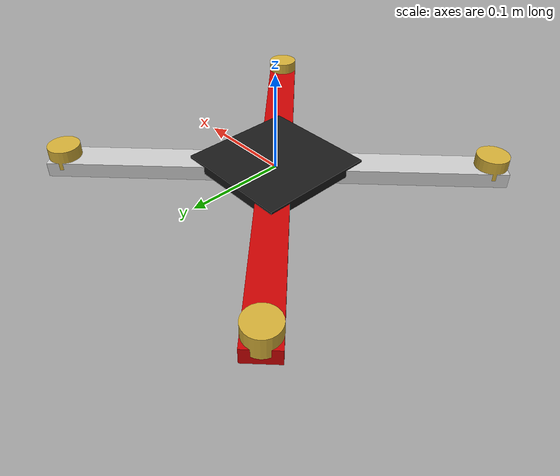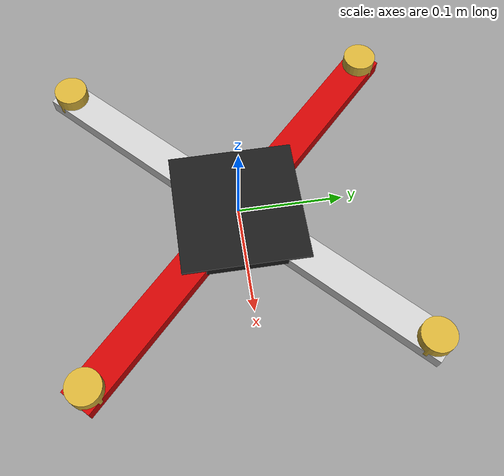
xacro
<?xml version="1.0"?>
<robot xmlns:xacro="http://www.ros.org/wiki/xacro" name="Kwad_frame">

	<xacro:include filename="$(find robotuna_ekf_simulator)/urdf/material.xacro" />
	<xacro:include filename="$(find robotuna_ekf_simulator)/urdf/macros.xacro"/>
	<!-- Constants -->
	<xacro:property name="pi_value" value="3.14159263" />

	<!-- Dimensions for cross beam arms -->
	<xacro:property name="width" value="0.0315" />
	<xacro:property name="length" value="0.45" />
	<xacro:property name="height" value="0.015" />
	<!-- Mass of cross beam arms -->
	<xacro:property name="mass_fr" value="0.3" />

	<!-- Dimension of propellers -->
	<xacro:property name="radiusp" value="0.20" />
	<!-- Mass of propellers -->
	<xacro:property name="mass_pr" value="0.0055" />
	<!-- Location of propellers -->
	<xacro:property name="prop_loc" value="0.15909" />

	<!-- Define inertial macro -->
	<xacro:macro name="default_inertial" params="mass p ix_value iy_value iz_value" >
		<inertial>
			<origin xyz="0 0 0" rpy="0 0 ${p}" />
			<mass value="${mass}" />
			<inertia ixx="${ix_value}" ixy="0" ixz="0"
					 iyy="${iy_value}" iyz="0" izz="${iz_value}" />
		</inertial>
	</xacro:macro>

	<!-- Base link -->
	<link name="base_link"/>

<!-- Quadcopter frame links -->
	<!-- First arm -->
	<xacro:boxLink
		name="arm_1"
		mass="${mass_fr}"
		x_dim="${width}" y_dim="${length}" z_dim="${height}"
		y="${pi_value/4}"
		color="red"
	/>

	<!-- Second arm -->
	<xacro:boxLink
		name="arm_2"
		mass="${mass_fr}"
		x_dim="${width}" y_dim="${length}" z_dim="${height}"
		y="${-pi_value/4}"
		color="white"
	/>

	<!-- Electronics mounting plate -->
	<xacro:boxLink
		name="plate1"
		mass="0.01"
		x_dim="0.12" y_dim="0.12" z_dim="0.01"
		color="black"
	/>
<!-- Motor links -->
	<!-- Front right motor -->
	<xacro:cylinderLink
		name="cyl_fr"
		mass="0.01"
		radius="0.016"
		height="0.02"
		color="golden"
	/>

	<!-- Back left motor -->
	<xacro:cylinderLink
		name="cyl_bl"
		mass="0.01"
		radius="0.016"
		height="0.02"
		color="golden"
	/>

	<!-- Front left motor -->
	<xacro:cylinderLink
		name="cyl_fl"
		mass="0.01"
		radius="0.016"
		height="0.02"
		color="golden"
	/>

	<!-- Back right motor -->
	<xacro:cylinderLink
		name="cyl_br"
		mass="0.01"
		radius="0.016"
		height="0.02"
		color="golden"
	/>

	<joint name="base_joint" type="fixed">
		<parent link="base_link" />
		<child link="arm_1" />
		<origin xyz="0 0 0" rpy="0 0 0" />
  	</joint>

	<!-- Define the joint between the arms of the frame -->
	<joint name="center" type="fixed">
		<parent link="arm_1" />
		<child link="arm_2" />

		<origin xyz="0 0 0" rpy="0 0 0"/>
		<axis xyz="0 0 1" />
	</joint>
<!-- Define joint between plate1 and frame -->
	<joint name="joint_plate1_frame" type="fixed">
		<parent link="arm_2" />
		<child link="plate1" />
		<origin xyz="${0} ${0} 0.005" rpy="0 0 0" />
		<axis xyz="0 0 1" />
	</joint>
<!-- Define joint between cyl_fr and frame -->
	<joint name="joint_cyl_fr_frame" type="fixed">
		<parent link="arm_2" />
		<child link="cyl_fr" />
		<origin xyz="${prop_loc - 0.01} ${prop_loc - 0.01} 0.01" rpy="0 0 0" />
		<axis xyz="0 0 1" />
	</joint>
<!-- Define joint between cyl_bl and frame -->
	<joint name="joint_cyl_bl_frame" type="fixed">
		<parent link="arm_2" />
		<child link="cyl_bl" />
		<origin xyz="${-prop_loc + 0.01} ${-prop_loc + 0.01} 0.01" rpy="0 0 0" />
		<axis xyz="0 0 1" />
	</joint>
<!-- Define joint between cyl_fl and frame -->
	<joint name="joint_cyl_fl_frame" type="fixed">
		<parent link="arm_1" />
		<child link="cyl_fl" />
		<origin xyz="${-prop_loc + 0.01} ${prop_loc - 0.01} 0.01" rpy="0 0 0" />
		<axis xyz="0 0 1" />
	</joint>
<!-- Define joint between cyl_br and frame -->
	<joint name="joint_cyl_br_frame" type="fixed">
		<parent link="arm_1" />
		<child link="cyl_br" />
		<origin xyz="${prop_loc - 0.01} ${-prop_loc + 0.01} 0.01" rpy="0 0 0" />
		<axis xyz="0 0 1" />
	</joint>
</robot>

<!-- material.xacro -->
<robot xmlns:xacro="http://www.ros.org/wiki/xacro">
	<material name="white">
		<color rgba="0.8 0.8 0.8 1" />
	</material>

	<material name="black">
		<color rgba="0.1 0.1 0.1 1" />
	</material>

	<material name="red">
		<color rgba="0.8 0.01 0.01 1" />
	</material>

	<material name="blue">
		<color rgba="0.01 0.01 0.8 1" />
	</material>

	<material name="golden">
		<color rgba="${212/255} ${175/255} ${55/255} 1" />
	</material>

</robot>

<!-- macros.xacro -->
<robot xmlns:xacro="http://www.ros.org/wiki/xacro">

  <!-- Fill-in-the-blank inertia diagonal matrix -->
	<xacro:macro name="default_inertia" params="mass ix iy iz" >
    <inertia  ixx="${ix}" ixy = "0" ixz = "0"
              iyy="${iy}" iyz = "0"
              izz="${iz}"
    />
	</xacro:macro>

  <xacro:macro name="cylinder_inertia" params="mass r h">
    <inertia  ixx="${mass*(3*r*r+h*h)/12}" ixy = "0" ixz = "0"
              iyy="${mass*(3*r*r+h*h)/12}" iyz = "0"
              izz="${mass*r*r/2}"
    />
  </xacro:macro>

  <xacro:macro name="box_inertia" params="mass x y z">
    <inertia  ixx="${mass*(y*y+z*z)/12}" ixy = "0" ixz = "0"
              iyy="${mass*(x*x+z*z)/12}" iyz = "0"
              izz="${mass*(x*x+y*y)/12}"
    />
  </xacro:macro>

  <xacro:macro name="sphere_inertia" params="mass r">
    <inertia  ixx="${2*mass*r*r/5}" ixy = "0" ixz = "0"
              iyy="${2*mass*r*r/5}" iyz = "0"
              izz="${2*mass*r*r/5}"
    />
  </xacro:macro>

  <xacro:macro name="boxLink" params="name mass x_dim y_dim z_dim r:=0 p:=0 y:=0 color:=grey">
    <link name="${name}">
      <inertial>
        <origin xyz="0 0 0" rpy="${r} ${p} ${y}"/>
        <mass value="${mass}"/>
        <xacro:box_inertia mass="${mass}" x="${x_dim}" y="${y_dim}" z="${z_dim}"/>
      </inertial>

      <collision>
        <origin xyz="0 0 0" rpy="${r} ${p} ${y}" />
        <geometry>
          <box size="${x_dim} ${y_dim} ${z_dim}" />
        </geometry>
      </collision>

      <visual>
        <origin xyz="0 0 0" rpy="${r} ${p} ${y}"/>
        <geometry>
          <box size="${x_dim} ${y_dim} ${z_dim}"/>
        </geometry>
        <material name="${color}"/>
      </visual>
    </link>
  </xacro:macro>

  <xacro:macro name="boxLink_customInertia"
    params="name mass
            x_dim y_dim z_dim
            ix iy iz
            r:=0 p:=0 y:=0
            color:=grey"
  >
    <link name="${name}">
      <inertial>
        <origin xyz="0 0 0" rpy="${r} ${p} ${y}"/>
        <mass value="${mass}"/>
        <xacro:default_inertia mass="${mass}" ix="${ix}" iy="${iy}" iz="${iz}"/>
      </inertial>

      <collision>
        <origin xyz="0 0 0" rpy="${r} ${p} ${y}" />
        <geometry>
          <box size="${x_dim} ${y_dim} ${z_dim}" />
        </geometry>
      </collision>

      <visual>
        <origin xyz="0 0 0" rpy="${r} ${p} ${y}"/>
        <geometry>
          <box size="${x_dim} ${y_dim} ${z_dim}"/>
        </geometry>
        <material name="${color}"/>
      </visual>
    </link>
  </xacro:macro>

  <xacro:macro name="cylinderLink" params="name mass radius height r:=0 p:=0 y:=0 color:=grey">
    <link name="${name}">
      <inertial>
        <origin xyz="0 0 0" rpy="${r} ${p} ${y}"/>
        <mass value="${mass}"/>
        <xacro:cylinder_inertia mass="${mass}" r="${radius}" h="${height}"/>
      </inertial>

      <collision>
        <origin xyz="0 0 0" rpy="${r} ${p} ${y}"/>
        <geometry>
          <cylinder radius="${radius}" length="${height}"/>
        </geometry>
      </collision>

      <visual>
        <origin xyz="0 0 0" rpy="${r} ${p} ${y}"/>
        <geometry>
          <cylinder radius="${radius}" length="${height}"/>
        </geometry>
        <material name="${color}"/>
      </visual>
    </link>
  </xacro:macro>

  <xacro:macro name="sphereLink" params="name mass r color:=grey">
    <link name="${name}">
      <inertial>
        <origin xyz="0 0 0" rpy="0 0 0" />
        <mass value="${mass}" />
        <xacro:sphere_inertia mass="${mass}" r="${r}" />
      </inertial>

      <collision>
        <origin xyz="0 0 0" rpy="0 0 0" />
        <geometry>
          <sphere radius="${r}" />
        </geometry>
      </collision>

      <visual>
        <origin xyz="0 0 0" rpy="0 0 0"/>
        <geometry>
          <sphere radius="${r}"/>
        </geometry>
        <material name="${color}"/>
      </visual>
    </link>
  </xacro:macro>
</robot>
